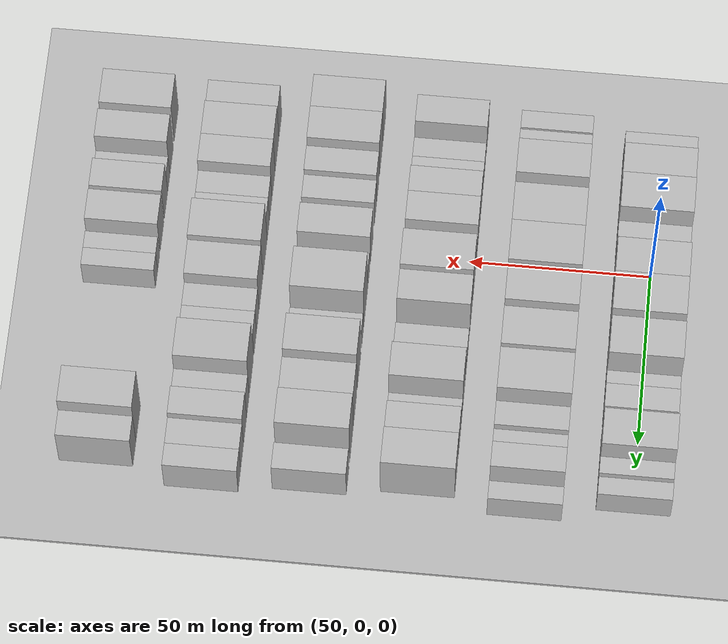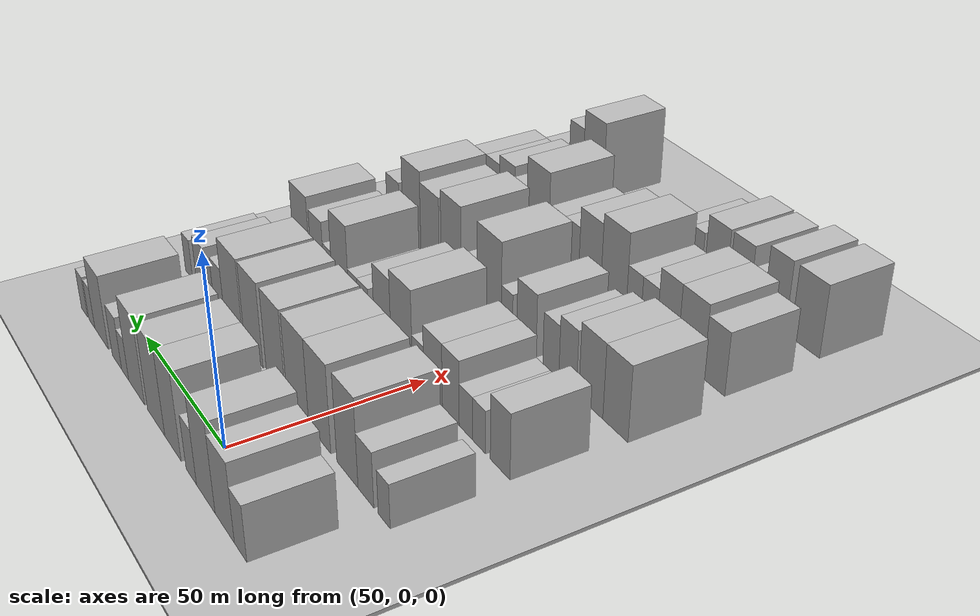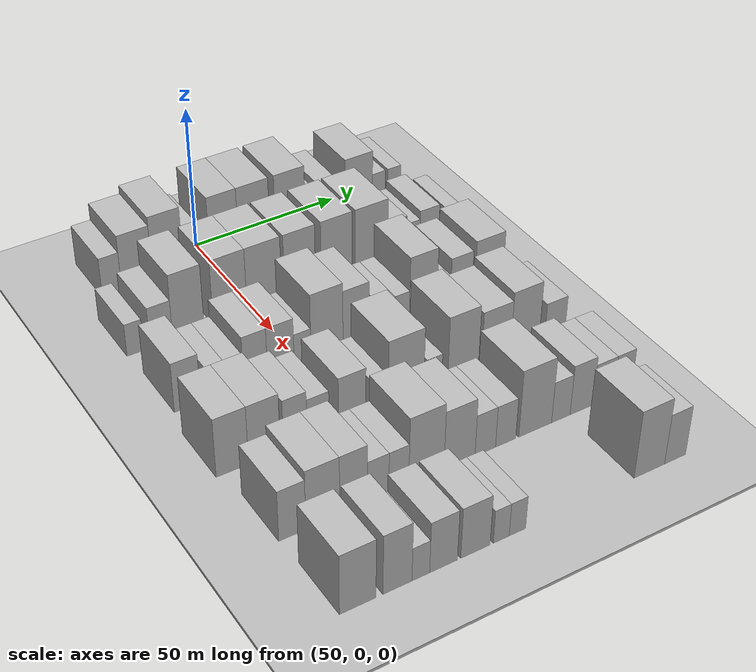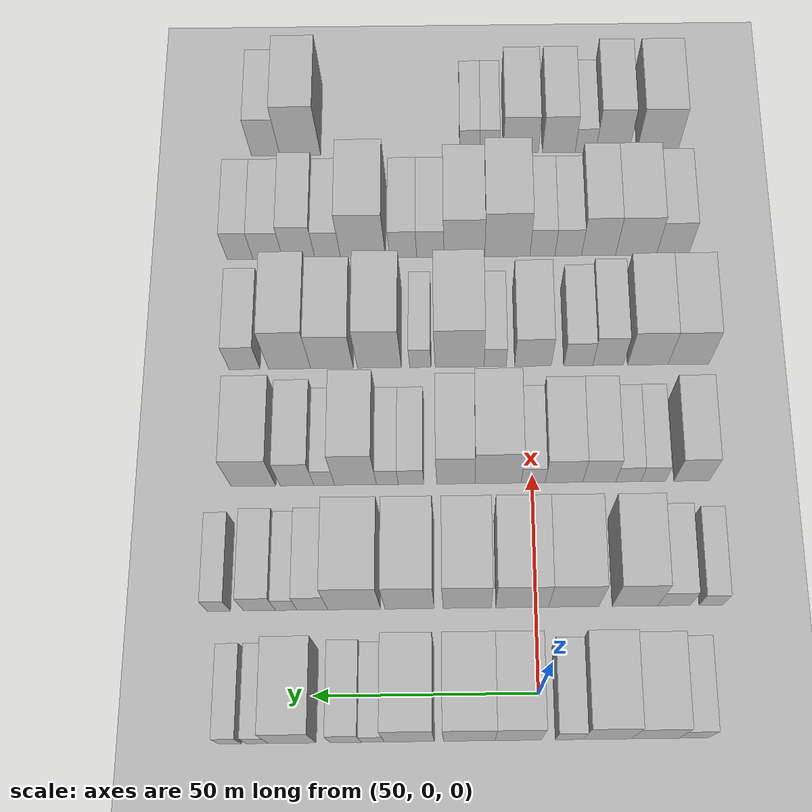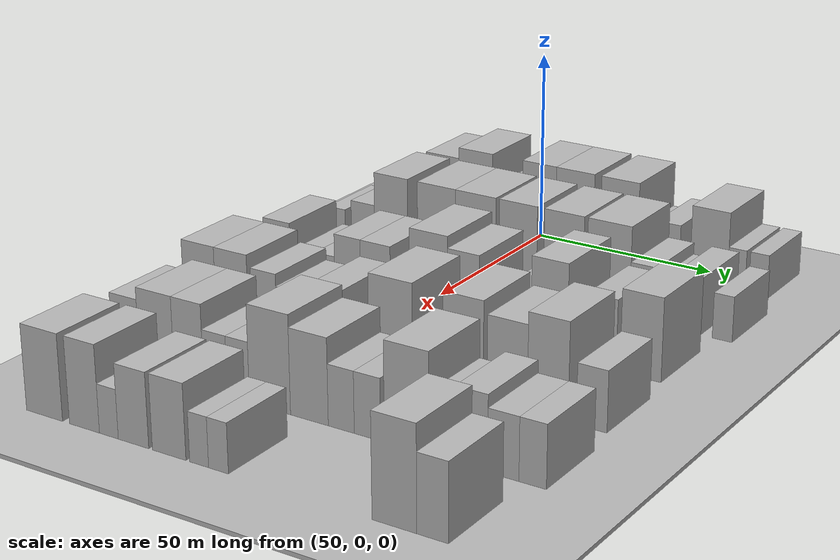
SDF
<sdf version="1.6">
 <world name="default">
  <include><name>ground_plane_1</name><uri>model://HANNAS_ground_plane</uri></include>
  <include>
   <name>ground_plane_2</name>
   <uri>model://HANNAS_ground_plane</uri>
   <pose>100 0 0  0 0 0</pose>
  </include>
  <model name="building_48">
   <static>1</static>
   <pose>50.0000 -33.5068 0 0.000000 0.000000 0.000000</pose>
   <link name="link">
    <pose>0 0 7.50 0 0 0</pose>
    <collision name="collision"><geometry><box><size>20.0000 6.4435 15.0000</size></box></geometry></collision>
    <visual name="visual">
     <cast_shadows>0</cast_shadows>
     <geometry><box><size>20.0000 6.4435 15.0000</size></box></geometry>
     <material>
      <script>
       <uri>model://HANNAS_wall/materials/scripts</uri>
       <uri>model://HANNAS_wall/materials/textures</uri>
       <name>vrc/HANNAS_wall</name>
      </script>
     </material>
    </visual>
   </link>
  </model>
  <model name="building_49">
   <static>1</static>
   <pose>50.0000 -25.0850 0 0.000000 0.000000 0.000000</pose>
   <link name="link">
    <pose>0 0 10.50 0 0 0</pose>
    <collision name="collision"><geometry><box><size>20.0000 10.4002 21.0000</size></box></geometry></collision>
    <visual name="visual">
     <cast_shadows>0</cast_shadows>
     <geometry><box><size>20.0000 10.4002 21.0000</size></box></geometry>
     <material>
      <script>
       <uri>model://HANNAS_wall/materials/scripts</uri>
       <uri>model://HANNAS_wall/materials/textures</uri>
       <name>vrc/HANNAS_wall</name>
      </script>
     </material>
    </visual>
   </link>
  </model>
  <model name="building_50">
   <static>1</static>
   <pose>50.0000 -14.6208 0 0.000000 0.000000 0.000000</pose>
   <link name="link">
    <pose>0 0 12.00 0 0 0</pose>
    <collision name="collision"><geometry><box><size>20.0000 10.5283 24.0000</size></box></geometry></collision>
    <visual name="visual">
     <cast_shadows>0</cast_shadows>
     <geometry><box><size>20.0000 10.5283 24.0000</size></box></geometry>
     <material>
      <script>
       <uri>model://HANNAS_wall/materials/scripts</uri>
       <uri>model://HANNAS_wall/materials/textures</uri>
       <name>vrc/HANNAS_wall</name>
      </script>
     </material>
    </visual>
   </link>
  </model>
  <model name="building_51">
   <static>1</static>
   <pose>50.0000 -6.2930 0 0.000000 0.000000 0.000000</pose>
   <link name="link">
    <pose>0 0 7.50 0 0 0</pose>
    <collision name="collision"><geometry><box><size>20.0000 6.1272 15.0000</size></box></geometry></collision>
    <visual name="visual">
     <cast_shadows>0</cast_shadows>
     <geometry><box><size>20.0000 6.1272 15.0000</size></box></geometry>
     <material>
      <script>
       <uri>model://HANNAS_wall/materials/scripts</uri>
       <uri>model://HANNAS_wall/materials/textures</uri>
       <name>vrc/HANNAS_wall</name>
      </script>
     </material>
    </visual>
   </link>
  </model>
  <model name="building_52">
   <static>1</static>
   <pose>50.0000 4.8331 0 0.000000 0.000000 0.000000</pose>
   <link name="link">
    <pose>0 0 12.00 0 0 0</pose>
    <collision name="collision"><geometry><box><size>20.0000 10.1249 24.0000</size></box></geometry></collision>
    <visual name="visual">
     <cast_shadows>0</cast_shadows>
     <geometry><box><size>20.0000 10.1249 24.0000</size></box></geometry>
     <material>
      <script>
       <uri>model://HANNAS_wall/materials/scripts</uri>
       <uri>model://HANNAS_wall/materials/textures</uri>
       <name>vrc/HANNAS_wall</name>
      </script>
     </material>
    </visual>
   </link>
  </model>
  <model name="building_53">
   <static>1</static>
   <pose>50.0000 15.5198 0 0.000000 0.000000 0.000000</pose>
   <link name="link">
    <pose>0 0 12.00 0 0 0</pose>
    <collision name="collision"><geometry><box><size>20.0000 11.2485 24.0000</size></box></geometry></collision>
    <visual name="visual">
     <cast_shadows>0</cast_shadows>
     <geometry><box><size>20.0000 11.2485 24.0000</size></box></geometry>
     <material>
      <script>
       <uri>model://HANNAS_wall/materials/scripts</uri>
       <uri>model://HANNAS_wall/materials/textures</uri>
       <name>vrc/HANNAS_wall</name>
      </script>
     </material>
    </visual>
   </link>
  </model>
  <model name="building_54">
   <static>1</static>
   <pose>50.0000 28.5931 0 0.000000 0.000000 0.000000</pose>
   <link name="link">
    <pose>0 0 12.00 0 0 0</pose>
    <collision name="collision"><geometry><box><size>20.0000 10.8982 24.0000</size></box></geometry></collision>
    <visual name="visual">
     <cast_shadows>0</cast_shadows>
     <geometry><box><size>20.0000 10.8982 24.0000</size></box></geometry>
     <material>
      <script>
       <uri>model://HANNAS_wall/materials/scripts</uri>
       <uri>model://HANNAS_wall/materials/textures</uri>
       <name>vrc/HANNAS_wall</name>
      </script>
     </material>
    </visual>
   </link>
  </model>
  <model name="building_55">
   <static>1</static>
   <pose>50.0000 36.5714 0 0.000000 0.000000 0.000000</pose>
   <link name="link">
    <pose>0 0 6.00 0 0 0</pose>
    <collision name="collision"><geometry><box><size>20.0000 5.0584 12.0000</size></box></geometry></collision>
    <visual name="visual">
     <cast_shadows>0</cast_shadows>
     <geometry><box><size>20.0000 5.0584 12.0000</size></box></geometry>
     <material>
      <script>
       <uri>model://HANNAS_wall/materials/scripts</uri>
       <uri>model://HANNAS_wall/materials/textures</uri>
       <name>vrc/HANNAS_wall</name>
      </script>
     </material>
    </visual>
   </link>
  </model>
  <model name="building_56">
   <static>1</static>
   <pose>50.0000 42.5042 0 0.000000 0.000000 0.000000</pose>
   <link name="link">
    <pose>0 0 7.50 0 0 0</pose>
    <collision name="collision"><geometry><box><size>20.0000 6.8070 15.0000</size></box></geometry></collision>
    <visual name="visual">
     <cast_shadows>0</cast_shadows>
     <geometry><box><size>20.0000 6.8070 15.0000</size></box></geometry>
     <material>
      <script>
       <uri>model://HANNAS_wall/materials/scripts</uri>
       <uri>model://HANNAS_wall/materials/textures</uri>
       <name>vrc/HANNAS_wall</name>
      </script>
     </material>
    </visual>
   </link>
  </model>
  <model name="building_57">
   <static>1</static>
   <pose>50.0000 54.0836 0 0.000000 0.000000 0.000000</pose>
   <link name="link">
    <pose>0 0 10.50 0 0 0</pose>
    <collision name="collision"><geometry><box><size>20.0000 10.3518 21.0000</size></box></geometry></collision>
    <visual name="visual">
     <cast_shadows>0</cast_shadows>
     <geometry><box><size>20.0000 10.3518 21.0000</size></box></geometry>
     <material>
      <script>
       <uri>model://HANNAS_wall/materials/scripts</uri>
       <uri>model://HANNAS_wall/materials/textures</uri>
       <name>vrc/HANNAS_wall</name>
      </script>
     </material>
    </visual>
   </link>
  </model>
  <model name="building_58">
   <static>1</static>
   <pose>50.0000 61.6799 0 0.000000 0.000000 0.000000</pose>
   <link name="link">
    <pose>0 0 6.00 0 0 0</pose>
    <collision name="collision"><geometry><box><size>20.0000 4.8407 12.0000</size></box></geometry></collision>
    <visual name="visual">
     <cast_shadows>0</cast_shadows>
     <geometry><box><size>20.0000 4.8407 12.0000</size></box></geometry>
     <material>
      <script>
       <uri>model://HANNAS_wall/materials/scripts</uri>
       <uri>model://HANNAS_wall/materials/textures</uri>
       <name>vrc/HANNAS_wall</name>
      </script>
     </material>
    </visual>
   </link>
  </model>
  <model name="building_59">
   <static>1</static>
   <pose>50.0000 67.6026 0 0.000000 0.000000 0.000000</pose>
   <link name="link">
    <pose>0 0 6.00 0 0 0</pose>
    <collision name="collision"><geometry><box><size>20.0000 5.0048 12.0000</size></box></geometry></collision>
    <visual name="visual">
     <cast_shadows>0</cast_shadows>
     <geometry><box><size>20.0000 5.0048 12.0000</size></box></geometry>
     <material>
      <script>
       <uri>model://HANNAS_wall/materials/scripts</uri>
       <uri>model://HANNAS_wall/materials/textures</uri>
       <name>vrc/HANNAS_wall</name>
      </script>
     </material>
    </visual>
   </link>
  </model>
  <model name="building_160">
   <static>1</static>
   <pose>79.0000 -39.4486 0 0.000000 0.000000 0.000000</pose>
   <link name="link">
    <pose>0 0 6.00 0 0 0</pose>
    <collision name="collision"><geometry><box><size>20.0000 5.3779 12.0000</size></box></geometry></collision>
    <visual name="visual">
     <cast_shadows>0</cast_shadows>
     <geometry><box><size>20.0000 5.3779 12.0000</size></box></geometry>
     <material>
      <script>
       <uri>model://HANNAS_wall/materials/scripts</uri>
       <uri>model://HANNAS_wall/materials/textures</uri>
       <name>vrc/HANNAS_wall</name>
      </script>
     </material>
    </visual>
   </link>
  </model>
  <model name="building_161">
   <static>1</static>
   <pose>79.0000 -31.0757 0 0.000000 0.000000 0.000000</pose>
   <link name="link">
    <pose>0 0 7.50 0 0 0</pose>
    <collision name="collision"><geometry><box><size>20.0000 7.3678 15.0000</size></box></geometry></collision>
    <visual name="visual">
     <cast_shadows>0</cast_shadows>
     <geometry><box><size>20.0000 7.3678 15.0000</size></box></geometry>
     <material>
      <script>
       <uri>model://HANNAS_wall/materials/scripts</uri>
       <uri>model://HANNAS_wall/materials/textures</uri>
       <name>vrc/HANNAS_wall</name>
      </script>
     </material>
    </visual>
   </link>
  </model>
  <model name="building_162">
   <static>1</static>
   <pose>79.0000 -22.2453 0 0.000000 0.000000 0.000000</pose>
   <link name="link">
    <pose>0 0 12.00 0 0 0</pose>
    <collision name="collision"><geometry><box><size>20.0000 10.2930 24.0000</size></box></geometry></collision>
    <visual name="visual">
     <cast_shadows>0</cast_shadows>
     <geometry><box><size>20.0000 10.2930 24.0000</size></box></geometry>
     <material>
      <script>
       <uri>model://HANNAS_wall/materials/scripts</uri>
       <uri>model://HANNAS_wall/materials/textures</uri>
       <name>vrc/HANNAS_wall</name>
      </script>
     </material>
    </visual>
   </link>
  </model>
  <model name="building_163">
   <static>1</static>
   <pose>79.0000 -8.4046 0 0.000000 0.000000 0.000000</pose>
   <link name="link">
    <pose>0 0 12.00 0 0 0</pose>
    <collision name="collision"><geometry><box><size>20.0000 11.3884 24.0000</size></box></geometry></collision>
    <visual name="visual">
     <cast_shadows>0</cast_shadows>
     <geometry><box><size>20.0000 11.3884 24.0000</size></box></geometry>
     <material>
      <script>
       <uri>model://HANNAS_wall/materials/scripts</uri>
       <uri>model://HANNAS_wall/materials/textures</uri>
       <name>vrc/HANNAS_wall</name>
      </script>
     </material>
    </visual>
   </link>
  </model>
  <model name="building_164">
   <static>1</static>
   <pose>79.0000 3.2386 0 0.000000 0.000000 0.000000</pose>
   <link name="link">
    <pose>0 0 12.00 0 0 0</pose>
    <collision name="collision"><geometry><box><size>20.0000 11.8980 24.0000</size></box></geometry></collision>
    <visual name="visual">
     <cast_shadows>0</cast_shadows>
     <geometry><box><size>20.0000 11.8980 24.0000</size></box></geometry>
     <material>
      <script>
       <uri>model://HANNAS_wall/materials/scripts</uri>
       <uri>model://HANNAS_wall/materials/textures</uri>
       <name>vrc/HANNAS_wall</name>
      </script>
     </material>
    </visual>
   </link>
  </model>
  <model name="building_165">
   <static>1</static>
   <pose>79.0000 15.6089 0 0.000000 0.000000 0.000000</pose>
   <link name="link">
    <pose>0 0 12.00 0 0 0</pose>
    <collision name="collision"><geometry><box><size>20.0000 10.8425 24.0000</size></box></geometry></collision>
    <visual name="visual">
     <cast_shadows>0</cast_shadows>
     <geometry><box><size>20.0000 10.8425 24.0000</size></box></geometry>
     <material>
      <script>
       <uri>model://HANNAS_wall/materials/scripts</uri>
       <uri>model://HANNAS_wall/materials/textures</uri>
       <name>vrc/HANNAS_wall</name>
      </script>
     </material>
    </visual>
   </link>
  </model>
  <model name="building_166">
   <static>1</static>
   <pose>79.0000 28.5748 0 0.000000 0.000000 0.000000</pose>
   <link name="link">
    <pose>0 0 12.00 0 0 0</pose>
    <collision name="collision"><geometry><box><size>20.0000 11.0894 24.0000</size></box></geometry></collision>
    <visual name="visual">
     <cast_shadows>0</cast_shadows>
     <geometry><box><size>20.0000 11.0894 24.0000</size></box></geometry>
     <material>
      <script>
       <uri>model://HANNAS_wall/materials/scripts</uri>
       <uri>model://HANNAS_wall/materials/textures</uri>
       <name>vrc/HANNAS_wall</name>
      </script>
     </material>
    </visual>
   </link>
  </model>
  <model name="building_167">
   <static>1</static>
   <pose>79.0000 41.0620 0 0.000000 0.000000 0.000000</pose>
   <link name="link">
    <pose>0 0 12.00 0 0 0</pose>
    <collision name="collision"><geometry><box><size>20.0000 11.8849 24.0000</size></box></geometry></collision>
    <visual name="visual">
     <cast_shadows>0</cast_shadows>
     <geometry><box><size>20.0000 11.8849 24.0000</size></box></geometry>
     <material>
      <script>
       <uri>model://HANNAS_wall/materials/scripts</uri>
       <uri>model://HANNAS_wall/materials/textures</uri>
       <name>vrc/HANNAS_wall</name>
      </script>
     </material>
    </visual>
   </link>
  </model>
  <model name="building_168">
   <static>1</static>
   <pose>79.0000 50.4676 0 0.000000 0.000000 0.000000</pose>
   <link name="link">
    <pose>0 0 7.50 0 0 0</pose>
    <collision name="collision"><geometry><box><size>20.0000 6.9264 15.0000</size></box></geometry></collision>
    <visual name="visual">
     <cast_shadows>0</cast_shadows>
     <geometry><box><size>20.0000 6.9264 15.0000</size></box></geometry>
     <material>
      <script>
       <uri>model://HANNAS_wall/materials/scripts</uri>
       <uri>model://HANNAS_wall/materials/textures</uri>
       <name>vrc/HANNAS_wall</name>
      </script>
     </material>
    </visual>
   </link>
  </model>
  <model name="building_169">
   <static>1</static>
   <pose>79.0000 56.3616 0 0.000000 0.000000 0.000000</pose>
   <link name="link">
    <pose>0 0 6.00 0 0 0</pose>
    <collision name="collision"><geometry><box><size>20.0000 4.8617 12.0000</size></box></geometry></collision>
    <visual name="visual">
     <cast_shadows>0</cast_shadows>
     <geometry><box><size>20.0000 4.8617 12.0000</size></box></geometry>
     <material>
      <script>
       <uri>model://HANNAS_wall/materials/scripts</uri>
       <uri>model://HANNAS_wall/materials/textures</uri>
       <name>vrc/HANNAS_wall</name>
      </script>
     </material>
    </visual>
   </link>
  </model>
  <model name="building_170">
   <static>1</static>
   <pose>79.0000 62.3846 0 0.000000 0.000000 0.000000</pose>
   <link name="link">
    <pose>0 0 7.50 0 0 0</pose>
    <collision name="collision"><geometry><box><size>20.0000 7.1843 15.0000</size></box></geometry></collision>
    <visual name="visual">
     <cast_shadows>0</cast_shadows>
     <geometry><box><size>20.0000 7.1843 15.0000</size></box></geometry>
     <material>
      <script>
       <uri>model://HANNAS_wall/materials/scripts</uri>
       <uri>model://HANNAS_wall/materials/textures</uri>
       <name>vrc/HANNAS_wall</name>
      </script>
     </material>
    </visual>
   </link>
  </model>
  <model name="building_171">
   <static>1</static>
   <pose>79.0000 71.5482 0 0.000000 0.000000 0.000000</pose>
   <link name="link">
    <pose>0 0 6.00 0 0 0</pose>
    <collision name="collision"><geometry><box><size>20.0000 5.1430 12.0000</size></box></geometry></collision>
    <visual name="visual">
     <cast_shadows>0</cast_shadows>
     <geometry><box><size>20.0000 5.1430 12.0000</size></box></geometry>
     <material>
      <script>
       <uri>model://HANNAS_wall/materials/scripts</uri>
       <uri>model://HANNAS_wall/materials/textures</uri>
       <name>vrc/HANNAS_wall</name>
      </script>
     </material>
    </visual>
   </link>
  </model>
  <model name="building_271">
   <static>1</static>
   <pose>108.0000 -37.0946 0 0.000000 0.000000 0.000000</pose>
   <link name="link">
    <pose>0 0 9.00 0 0 0</pose>
    <collision name="collision"><geometry><box><size>20.0000 8.2487 18.0000</size></box></geometry></collision>
    <visual name="visual">
     <cast_shadows>0</cast_shadows>
     <geometry><box><size>20.0000 8.2487 18.0000</size></box></geometry>
     <material>
      <script>
       <uri>model://HANNAS_wall/materials/scripts</uri>
       <uri>model://HANNAS_wall/materials/textures</uri>
       <name>vrc/HANNAS_wall</name>
      </script>
     </material>
    </visual>
   </link>
  </model>
  <model name="building_272">
   <static>1</static>
   <pose>108.0000 -28.0883 0 0.000000 0.000000 0.000000</pose>
   <link name="link">
    <pose>0 0 6.00 0 0 0</pose>
    <collision name="collision"><geometry><box><size>20.0000 5.7637 12.0000</size></box></geometry></collision>
    <visual name="visual">
     <cast_shadows>0</cast_shadows>
     <geometry><box><size>20.0000 5.7637 12.0000</size></box></geometry>
     <material>
      <script>
       <uri>model://HANNAS_wall/materials/scripts</uri>
       <uri>model://HANNAS_wall/materials/textures</uri>
       <name>vrc/HANNAS_wall</name>
      </script>
     </material>
    </visual>
   </link>
  </model>
  <model name="building_273">
   <static>1</static>
   <pose>108.0000 -22.3022 0 0.000000 0.000000 0.000000</pose>
   <link name="link">
    <pose>0 0 6.00 0 0 0</pose>
    <collision name="collision"><geometry><box><size>20.0000 5.8085 12.0000</size></box></geometry></collision>
    <visual name="visual">
     <cast_shadows>0</cast_shadows>
     <geometry><box><size>20.0000 5.8085 12.0000</size></box></geometry>
     <material>
      <script>
       <uri>model://HANNAS_wall/materials/scripts</uri>
       <uri>model://HANNAS_wall/materials/textures</uri>
       <name>vrc/HANNAS_wall</name>
      </script>
     </material>
    </visual>
   </link>
  </model>
  <model name="building_274">
   <static>1</static>
   <pose>108.0000 -15.5420 0 0.000000 0.000000 0.000000</pose>
   <link name="link">
    <pose>0 0 9.00 0 0 0</pose>
    <collision name="collision"><geometry><box><size>20.0000 7.7120 18.0000</size></box></geometry></collision>
    <visual name="visual">
     <cast_shadows>0</cast_shadows>
     <geometry><box><size>20.0000 7.7120 18.0000</size></box></geometry>
     <material>
      <script>
       <uri>model://HANNAS_wall/materials/scripts</uri>
       <uri>model://HANNAS_wall/materials/textures</uri>
       <name>vrc/HANNAS_wall</name>
      </script>
     </material>
    </visual>
   </link>
  </model>
  <model name="building_275">
   <static>1</static>
   <pose>108.0000 -7.3101 0 0.000000 0.000000 0.000000</pose>
   <link name="link">
    <pose>0 0 9.00 0 0 0</pose>
    <collision name="collision"><geometry><box><size>20.0000 8.7517 18.0000</size></box></geometry></collision>
    <visual name="visual">
     <cast_shadows>0</cast_shadows>
     <geometry><box><size>20.0000 8.7517 18.0000</size></box></geometry>
     <material>
      <script>
       <uri>model://HANNAS_wall/materials/scripts</uri>
       <uri>model://HANNAS_wall/materials/textures</uri>
       <name>vrc/HANNAS_wall</name>
      </script>
     </material>
    </visual>
   </link>
  </model>
  <model name="building_276">
   <static>1</static>
   <pose>108.0000 -0.1403 0 0.000000 0.000000 0.000000</pose>
   <link name="link">
    <pose>0 0 6.00 0 0 0</pose>
    <collision name="collision"><geometry><box><size>20.0000 5.5878 12.0000</size></box></geometry></collision>
    <visual name="visual">
     <cast_shadows>0</cast_shadows>
     <geometry><box><size>20.0000 5.5878 12.0000</size></box></geometry>
     <material>
      <script>
       <uri>model://HANNAS_wall/materials/scripts</uri>
       <uri>model://HANNAS_wall/materials/textures</uri>
       <name>vrc/HANNAS_wall</name>
      </script>
     </material>
    </visual>
   </link>
  </model>
  <model name="building_277">
   <static>1</static>
   <pose>108.0000 8.0390 0 0.000000 0.000000 0.000000</pose>
   <link name="link">
    <pose>0 0 12.00 0 0 0</pose>
    <collision name="collision"><geometry><box><size>20.0000 10.7709 24.0000</size></box></geometry></collision>
    <visual name="visual">
     <cast_shadows>0</cast_shadows>
     <geometry><box><size>20.0000 10.7709 24.0000</size></box></geometry>
     <material>
      <script>
       <uri>model://HANNAS_wall/materials/scripts</uri>
       <uri>model://HANNAS_wall/materials/textures</uri>
       <name>vrc/HANNAS_wall</name>
      </script>
     </material>
    </visual>
   </link>
  </model>
  <model name="building_278">
   <static>1</static>
   <pose>108.0000 17.8528 0 0.000000 0.000000 0.000000</pose>
   <link name="link">
    <pose>0 0 10.50 0 0 0</pose>
    <collision name="collision"><geometry><box><size>20.0000 8.8566 21.0000</size></box></geometry></collision>
    <visual name="visual">
     <cast_shadows>0</cast_shadows>
     <geometry><box><size>20.0000 8.8566 21.0000</size></box></geometry>
     <material>
      <script>
       <uri>model://HANNAS_wall/materials/scripts</uri>
       <uri>model://HANNAS_wall/materials/textures</uri>
       <name>vrc/HANNAS_wall</name>
      </script>
     </material>
    </visual>
   </link>
  </model>
  <model name="building_279">
   <static>1</static>
   <pose>108.0000 28.2652 0 0.000000 0.000000 0.000000</pose>
   <link name="link">
    <pose>0 0 6.00 0 0 0</pose>
    <collision name="collision"><geometry><box><size>20.0000 5.9684 12.0000</size></box></geometry></collision>
    <visual name="visual">
     <cast_shadows>0</cast_shadows>
     <geometry><box><size>20.0000 5.9684 12.0000</size></box></geometry>
     <material>
      <script>
       <uri>model://HANNAS_wall/materials/scripts</uri>
       <uri>model://HANNAS_wall/materials/textures</uri>
       <name>vrc/HANNAS_wall</name>
      </script>
     </material>
    </visual>
   </link>
  </model>
  <model name="building_280">
   <static>1</static>
   <pose>108.0000 33.7950 0 0.000000 0.000000 0.000000</pose>
   <link name="link">
    <pose>0 0 6.00 0 0 0</pose>
    <collision name="collision"><geometry><box><size>20.0000 5.0912 12.0000</size></box></geometry></collision>
    <visual name="visual">
     <cast_shadows>0</cast_shadows>
     <geometry><box><size>20.0000 5.0912 12.0000</size></box></geometry>
     <material>
      <script>
       <uri>model://HANNAS_wall/materials/scripts</uri>
       <uri>model://HANNAS_wall/materials/textures</uri>
       <name>vrc/HANNAS_wall</name>
      </script>
     </material>
    </visual>
   </link>
  </model>
  <model name="building_281">
   <static>1</static>
   <pose>108.0000 41.2083 0 0.000000 0.000000 0.000000</pose>
   <link name="link">
    <pose>0 0 12.00 0 0 0</pose>
    <collision name="collision"><geometry><box><size>20.0000 9.7353 24.0000</size></box></geometry></collision>
    <visual name="visual">
     <cast_shadows>0</cast_shadows>
     <geometry><box><size>20.0000 9.7353 24.0000</size></box></geometry>
     <material>
      <script>
       <uri>model://HANNAS_wall/materials/scripts</uri>
       <uri>model://HANNAS_wall/materials/textures</uri>
       <name>vrc/HANNAS_wall</name>
      </script>
     </material>
    </visual>
   </link>
  </model>
  <model name="building_282">
   <static>1</static>
   <pose>108.0000 48.5063 0 0.000000 0.000000 0.000000</pose>
   <link name="link">
    <pose>0 0 6.00 0 0 0</pose>
    <collision name="collision"><geometry><box><size>20.0000 4.8606 12.0000</size></box></geometry></collision>
    <visual name="visual">
     <cast_shadows>0</cast_shadows>
     <geometry><box><size>20.0000 4.8606 12.0000</size></box></geometry>
     <material>
      <script>
       <uri>model://HANNAS_wall/materials/scripts</uri>
       <uri>model://HANNAS_wall/materials/textures</uri>
       <name>vrc/HANNAS_wall</name>
      </script>
     </material>
    </visual>
   </link>
  </model>
  <model name="building_283">
   <static>1</static>
   <pose>108.0000 54.8589 0 0.000000 0.000000 0.000000</pose>
   <link name="link">
    <pose>0 0 9.00 0 0 0</pose>
    <collision name="collision"><geometry><box><size>20.0000 7.8447 18.0000</size></box></geometry></collision>
    <visual name="visual">
     <cast_shadows>0</cast_shadows>
     <geometry><box><size>20.0000 7.8447 18.0000</size></box></geometry>
     <material>
      <script>
       <uri>model://HANNAS_wall/materials/scripts</uri>
       <uri>model://HANNAS_wall/materials/textures</uri>
       <name>vrc/HANNAS_wall</name>
      </script>
     </material>
    </visual>
   </link>
  </model>
  <model name="building_284">
   <static>1</static>
   <pose>108.0000 64.9696 0 0.000000 0.000000 0.000000</pose>
   <link name="link">
    <pose>0 0 10.50 0 0 0</pose>
    <collision name="collision"><geometry><box><size>20.0000 10.3768 21.0000</size></box></geometry></collision>
    <visual name="visual">
     <cast_shadows>0</cast_shadows>
     <geometry><box><size>20.0000 10.3768 21.0000</size></box></geometry>
     <material>
      <script>
       <uri>model://HANNAS_wall/materials/scripts</uri>
       <uri>model://HANNAS_wall/materials/textures</uri>
       <name>vrc/HANNAS_wall</name>
      </script>
     </material>
    </visual>
   </link>
  </model>
  <model name="building_384">
   <static>1</static>
   <pose>137.0000 -38.3484 0 0.000000 0.000000 0.000000</pose>
   <link name="link">
    <pose>0 0 10.50 0 0 0</pose>
    <collision name="collision"><geometry><box><size>20.0000 9.7846 21.0000</size></box></geometry></collision>
    <visual name="visual">
     <cast_shadows>0</cast_shadows>
     <geometry><box><size>20.0000 9.7846 21.0000</size></box></geometry>
     <material>
      <script>
       <uri>model://HANNAS_wall/materials/scripts</uri>
       <uri>model://HANNAS_wall/materials/textures</uri>
       <name>vrc/HANNAS_wall</name>
      </script>
     </material>
    </visual>
   </link>
  </model>
  <model name="building_385">
   <static>1</static>
   <pose>137.0000 -28.5761 0 0.000000 0.000000 0.000000</pose>
   <link name="link">
    <pose>0 0 10.50 0 0 0</pose>
    <collision name="collision"><geometry><box><size>20.0000 9.7600 21.0000</size></box></geometry></collision>
    <visual name="visual">
     <cast_shadows>0</cast_shadows>
     <geometry><box><size>20.0000 9.7600 21.0000</size></box></geometry>
     <material>
      <script>
       <uri>model://HANNAS_wall/materials/scripts</uri>
       <uri>model://HANNAS_wall/materials/textures</uri>
       <name>vrc/HANNAS_wall</name>
      </script>
     </material>
    </visual>
   </link>
  </model>
  <model name="building_386">
   <static>1</static>
   <pose>137.0000 -19.0066 0 0.000000 0.000000 0.000000</pose>
   <link name="link">
    <pose>0 0 9.00 0 0 0</pose>
    <collision name="collision"><geometry><box><size>20.0000 7.3791 18.0000</size></box></geometry></collision>
    <visual name="visual">
     <cast_shadows>0</cast_shadows>
     <geometry><box><size>20.0000 7.3791 18.0000</size></box></geometry>
     <material>
      <script>
       <uri>model://HANNAS_wall/materials/scripts</uri>
       <uri>model://HANNAS_wall/materials/textures</uri>
       <name>vrc/HANNAS_wall</name>
      </script>
     </material>
    </visual>
   </link>
  </model>
  <model name="building_387">
   <static>1</static>
   <pose>137.0000 -11.8386 0 0.000000 0.000000 0.000000</pose>
   <link name="link">
    <pose>0 0 7.50 0 0 0</pose>
    <collision name="collision"><geometry><box><size>20.0000 6.9569 15.0000</size></box></geometry></collision>
    <visual name="visual">
     <cast_shadows>0</cast_shadows>
     <geometry><box><size>20.0000 6.9569 15.0000</size></box></geometry>
     <material>
      <script>
       <uri>model://HANNAS_wall/materials/scripts</uri>
       <uri>model://HANNAS_wall/materials/textures</uri>
       <name>vrc/HANNAS_wall</name>
      </script>
     </material>
    </visual>
   </link>
  </model>
  <model name="building_388">
   <static>1</static>
   <pose>137.0000 -0.9515 0 0.000000 0.000000 0.000000</pose>
   <link name="link">
    <pose>0 0 9.00 0 0 0</pose>
    <collision name="collision"><geometry><box><size>20.0000 8.8173 18.0000</size></box></geometry></collision>
    <visual name="visual">
     <cast_shadows>0</cast_shadows>
     <geometry><box><size>20.0000 8.8173 18.0000</size></box></geometry>
     <material>
      <script>
       <uri>model://HANNAS_wall/materials/scripts</uri>
       <uri>model://HANNAS_wall/materials/textures</uri>
       <name>vrc/HANNAS_wall</name>
      </script>
     </material>
    </visual>
   </link>
  </model>
  <model name="building_389">
   <static>1</static>
   <pose>137.0000 8.1065 0 0.000000 0.000000 0.000000</pose>
   <link name="link">
    <pose>0 0 6.00 0 0 0</pose>
    <collision name="collision"><geometry><box><size>20.0000 5.2987 12.0000</size></box></geometry></collision>
    <visual name="visual">
     <cast_shadows>0</cast_shadows>
     <geometry><box><size>20.0000 5.2987 12.0000</size></box></geometry>
     <material>
      <script>
       <uri>model://HANNAS_wall/materials/scripts</uri>
       <uri>model://HANNAS_wall/materials/textures</uri>
       <name>vrc/HANNAS_wall</name>
      </script>
     </material>
    </visual>
   </link>
  </model>
  <model name="building_390">
   <static>1</static>
   <pose>137.0000 16.6434 0 0.000000 0.000000 0.000000</pose>
   <link name="link">
    <pose>0 0 12.00 0 0 0</pose>
    <collision name="collision"><geometry><box><size>20.0000 11.7750 24.0000</size></box></geometry></collision>
    <visual name="visual">
     <cast_shadows>0</cast_shadows>
     <geometry><box><size>20.0000 11.7750 24.0000</size></box></geometry>
     <material>
      <script>
       <uri>model://HANNAS_wall/materials/scripts</uri>
       <uri>model://HANNAS_wall/materials/textures</uri>
       <name>vrc/HANNAS_wall</name>
      </script>
     </material>
    </visual>
   </link>
  </model>
  <model name="building_391">
   <static>1</static>
   <pose>137.0000 26.0926 0 0.000000 0.000000 0.000000</pose>
   <link name="link">
    <pose>0 0 6.00 0 0 0</pose>
    <collision name="collision"><geometry><box><size>20.0000 5.1236 12.0000</size></box></geometry></collision>
    <visual name="visual">
     <cast_shadows>0</cast_shadows>
     <geometry><box><size>20.0000 5.1236 12.0000</size></box></geometry>
     <material>
      <script>
       <uri>model://HANNAS_wall/materials/scripts</uri>
       <uri>model://HANNAS_wall/materials/textures</uri>
       <name>vrc/HANNAS_wall</name>
      </script>
     </material>
    </visual>
   </link>
  </model>
  <model name="building_392">
   <static>1</static>
   <pose>137.0000 35.9270 0 0.000000 0.000000 0.000000</pose>
   <link name="link">
    <pose>0 0 12.00 0 0 0</pose>
    <collision name="collision"><geometry><box><size>20.0000 10.5451 24.0000</size></box></geometry></collision>
    <visual name="visual">
     <cast_shadows>0</cast_shadows>
     <geometry><box><size>20.0000 10.5451 24.0000</size></box></geometry>
     <material>
      <script>
       <uri>model://HANNAS_wall/materials/scripts</uri>
       <uri>model://HANNAS_wall/materials/textures</uri>
       <name>vrc/HANNAS_wall</name>
      </script>
     </material>
    </visual>
   </link>
  </model>
  <model name="building_393">
   <static>1</static>
   <pose>137.0000 47.3110 0 0.000000 0.000000 0.000000</pose>
   <link name="link">
    <pose>0 0 10.50 0 0 0</pose>
    <collision name="collision"><geometry><box><size>20.0000 10.2228 21.0000</size></box></geometry></collision>
    <visual name="visual">
     <cast_shadows>0</cast_shadows>
     <geometry><box><size>20.0000 10.2228 21.0000</size></box></geometry>
     <material>
      <script>
       <uri>model://HANNAS_wall/materials/scripts</uri>
       <uri>model://HANNAS_wall/materials/textures</uri>
       <name>vrc/HANNAS_wall</name>
      </script>
     </material>
    </visual>
   </link>
  </model>
  <model name="building_394">
   <static>1</static>
   <pose>137.0000 57.4984 0 0.000000 0.000000 0.000000</pose>
   <link name="link">
    <pose>0 0 12.00 0 0 0</pose>
    <collision name="collision"><geometry><box><size>20.0000 10.1521 24.0000</size></box></geometry></collision>
    <visual name="visual">
     <cast_shadows>0</cast_shadows>
     <geometry><box><size>20.0000 10.1521 24.0000</size></box></geometry>
     <material>
      <script>
       <uri>model://HANNAS_wall/materials/scripts</uri>
       <uri>model://HANNAS_wall/materials/textures</uri>
       <name>vrc/HANNAS_wall</name>
      </script>
     </material>
    </visual>
   </link>
  </model>
  <model name="building_395">
   <static>1</static>
   <pose>137.0000 68.2930 0 0.000000 0.000000 0.000000</pose>
   <link name="link">
    <pose>0 0 7.50 0 0 0</pose>
    <collision name="collision"><geometry><box><size>20.0000 7.4371 15.0000</size></box></geometry></collision>
    <visual name="visual">
     <cast_shadows>0</cast_shadows>
     <geometry><box><size>20.0000 7.4371 15.0000</size></box></geometry>
     <material>
      <script>
       <uri>model://HANNAS_wall/materials/scripts</uri>
       <uri>model://HANNAS_wall/materials/textures</uri>
       <name>vrc/HANNAS_wall</name>
      </script>
     </material>
    </visual>
   </link>
  </model>
  <model name="building_499">
   <static>1</static>
   <pose>166.0000 -36.3883 0 0.000000 0.000000 0.000000</pose>
   <link name="link">
    <pose>0 0 9.00 0 0 0</pose>
    <collision name="collision"><geometry><box><size>20.0000 7.9838 18.0000</size></box></geometry></collision>
    <visual name="visual">
     <cast_shadows>0</cast_shadows>
     <geometry><box><size>20.0000 7.9838 18.0000</size></box></geometry>
     <material>
      <script>
       <uri>model://HANNAS_wall/materials/scripts</uri>
       <uri>model://HANNAS_wall/materials/textures</uri>
       <name>vrc/HANNAS_wall</name>
      </script>
     </material>
    </visual>
   </link>
  </model>
  <model name="building_500">
   <static>1</static>
   <pose>166.0000 -27.3306 0 0.000000 0.000000 0.000000</pose>
   <link name="link">
    <pose>0 0 10.50 0 0 0</pose>
    <collision name="collision"><geometry><box><size>20.0000 10.1316 21.0000</size></box></geometry></collision>
    <visual name="visual">
     <cast_shadows>0</cast_shadows>
     <geometry><box><size>20.0000 10.1316 21.0000</size></box></geometry>
     <material>
      <script>
       <uri>model://HANNAS_wall/materials/scripts</uri>
       <uri>model://HANNAS_wall/materials/textures</uri>
       <name>vrc/HANNAS_wall</name>
      </script>
     </material>
    </visual>
   </link>
  </model>
  <model name="building_501">
   <static>1</static>
   <pose>166.0000 -18.0537 0 0.000000 0.000000 0.000000</pose>
   <link name="link">
    <pose>0 0 10.50 0 0 0</pose>
    <collision name="collision"><geometry><box><size>20.0000 8.4223 21.0000</size></box></geometry></collision>
    <visual name="visual">
     <cast_shadows>0</cast_shadows>
     <geometry><box><size>20.0000 8.4223 21.0000</size></box></geometry>
     <material>
      <script>
       <uri>model://HANNAS_wall/materials/scripts</uri>
       <uri>model://HANNAS_wall/materials/textures</uri>
       <name>vrc/HANNAS_wall</name>
      </script>
     </material>
    </visual>
   </link>
  </model>
  <model name="building_502">
   <static>1</static>
   <pose>166.0000 -10.5516 0 0.000000 0.000000 0.000000</pose>
   <link name="link">
    <pose>0 0 7.50 0 0 0</pose>
    <collision name="collision"><geometry><box><size>20.0000 6.5819 15.0000</size></box></geometry></collision>
    <visual name="visual">
     <cast_shadows>0</cast_shadows>
     <geometry><box><size>20.0000 6.5819 15.0000</size></box></geometry>
     <material>
      <script>
       <uri>model://HANNAS_wall/materials/scripts</uri>
       <uri>model://HANNAS_wall/materials/textures</uri>
       <name>vrc/HANNAS_wall</name>
      </script>
     </material>
    </visual>
   </link>
  </model>
  <model name="building_503">
   <static>1</static>
   <pose>166.0000 -4.1573 0 0.000000 0.000000 0.000000</pose>
   <link name="link">
    <pose>0 0 7.50 0 0 0</pose>
    <collision name="collision"><geometry><box><size>20.0000 6.2067 15.0000</size></box></geometry></collision>
    <visual name="visual">
     <cast_shadows>0</cast_shadows>
     <geometry><box><size>20.0000 6.2067 15.0000</size></box></geometry>
     <material>
      <script>
       <uri>model://HANNAS_wall/materials/scripts</uri>
       <uri>model://HANNAS_wall/materials/textures</uri>
       <name>vrc/HANNAS_wall</name>
      </script>
     </material>
    </visual>
   </link>
  </model>
  <model name="building_504">
   <static>1</static>
   <pose>166.0000 4.5342 0 0.000000 0.000000 0.000000</pose>
   <link name="link">
    <pose>0 0 12.00 0 0 0</pose>
    <collision name="collision"><geometry><box><size>20.0000 11.1763 24.0000</size></box></geometry></collision>
    <visual name="visual">
     <cast_shadows>0</cast_shadows>
     <geometry><box><size>20.0000 11.1763 24.0000</size></box></geometry>
     <material>
      <script>
       <uri>model://HANNAS_wall/materials/scripts</uri>
       <uri>model://HANNAS_wall/materials/textures</uri>
       <name>vrc/HANNAS_wall</name>
      </script>
     </material>
    </visual>
   </link>
  </model>
  <model name="building_505">
   <static>1</static>
   <pose>166.0000 15.1437 0 0.000000 0.000000 0.000000</pose>
   <link name="link">
    <pose>0 0 10.50 0 0 0</pose>
    <collision name="collision"><geometry><box><size>20.0000 10.0427 21.0000</size></box></geometry></collision>
    <visual name="visual">
     <cast_shadows>0</cast_shadows>
     <geometry><box><size>20.0000 10.0427 21.0000</size></box></geometry>
     <material>
      <script>
       <uri>model://HANNAS_wall/materials/scripts</uri>
       <uri>model://HANNAS_wall/materials/textures</uri>
       <name>vrc/HANNAS_wall</name>
      </script>
     </material>
    </visual>
   </link>
  </model>
  <model name="building_506">
   <static>1</static>
   <pose>166.0000 23.5519 0 0.000000 0.000000 0.000000</pose>
   <link name="link">
    <pose>0 0 7.50 0 0 0</pose>
    <collision name="collision"><geometry><box><size>20.0000 6.7736 15.0000</size></box></geometry></collision>
    <visual name="visual">
     <cast_shadows>0</cast_shadows>
     <geometry><box><size>20.0000 6.7736 15.0000</size></box></geometry>
     <material>
      <script>
       <uri>model://HANNAS_wall/materials/scripts</uri>
       <uri>model://HANNAS_wall/materials/textures</uri>
       <name>vrc/HANNAS_wall</name>
      </script>
     </material>
    </visual>
   </link>
  </model>
  <model name="building_507">
   <static>1</static>
   <pose>166.0000 30.2929 0 0.000000 0.000000 0.000000</pose>
   <link name="link">
    <pose>0 0 7.50 0 0 0</pose>
    <collision name="collision"><geometry><box><size>20.0000 6.7084 15.0000</size></box></geometry></collision>
    <visual name="visual">
     <cast_shadows>0</cast_shadows>
     <geometry><box><size>20.0000 6.7084 15.0000</size></box></geometry>
     <material>
      <script>
       <uri>model://HANNAS_wall/materials/scripts</uri>
       <uri>model://HANNAS_wall/materials/textures</uri>
       <name>vrc/HANNAS_wall</name>
      </script>
     </material>
    </visual>
   </link>
  </model>
  <model name="building_508">
   <static>1</static>
   <pose>166.0000 40.2114 0 0.000000 0.000000 0.000000</pose>
   <link name="link">
    <pose>0 0 12.00 0 0 0</pose>
    <collision name="collision"><geometry><box><size>20.0000 11.1287 24.0000</size></box></geometry></collision>
    <visual name="visual">
     <cast_shadows>0</cast_shadows>
     <geometry><box><size>20.0000 11.1287 24.0000</size></box></geometry>
     <material>
      <script>
       <uri>model://HANNAS_wall/materials/scripts</uri>
       <uri>model://HANNAS_wall/materials/textures</uri>
       <name>vrc/HANNAS_wall</name>
      </script>
     </material>
    </visual>
   </link>
  </model>
  <model name="building_509">
   <static>1</static>
   <pose>166.0000 48.9553 0 0.000000 0.000000 0.000000</pose>
   <link name="link">
    <pose>0 0 7.50 0 0 0</pose>
    <collision name="collision"><geometry><box><size>20.0000 6.3591 15.0000</size></box></geometry></collision>
    <visual name="visual">
     <cast_shadows>0</cast_shadows>
     <geometry><box><size>20.0000 6.3591 15.0000</size></box></geometry>
     <material>
      <script>
       <uri>model://HANNAS_wall/materials/scripts</uri>
       <uri>model://HANNAS_wall/materials/textures</uri>
       <name>vrc/HANNAS_wall</name>
      </script>
     </material>
    </visual>
   </link>
  </model>
  <model name="building_510">
   <static>1</static>
   <pose>166.0000 56.1042 0 0.000000 0.000000 0.000000</pose>
   <link name="link">
    <pose>0 0 9.00 0 0 0</pose>
    <collision name="collision"><geometry><box><size>20.0000 7.9387 18.0000</size></box></geometry></collision>
    <visual name="visual">
     <cast_shadows>0</cast_shadows>
     <geometry><box><size>20.0000 7.9387 18.0000</size></box></geometry>
     <material>
      <script>
       <uri>model://HANNAS_wall/materials/scripts</uri>
       <uri>model://HANNAS_wall/materials/textures</uri>
       <name>vrc/HANNAS_wall</name>
      </script>
     </material>
    </visual>
   </link>
  </model>
  <model name="building_511">
   <static>1</static>
   <pose>166.0000 63.7655 0 0.000000 0.000000 0.000000</pose>
   <link name="link">
    <pose>0 0 7.50 0 0 0</pose>
    <collision name="collision"><geometry><box><size>20.0000 7.3839 15.0000</size></box></geometry></collision>
    <visual name="visual">
     <cast_shadows>0</cast_shadows>
     <geometry><box><size>20.0000 7.3839 15.0000</size></box></geometry>
     <material>
      <script>
       <uri>model://HANNAS_wall/materials/scripts</uri>
       <uri>model://HANNAS_wall/materials/textures</uri>
       <name>vrc/HANNAS_wall</name>
      </script>
     </material>
    </visual>
   </link>
  </model>
  <model name="building_512">
   <static>1</static>
   <pose>166.0000 70.6567 0 0.000000 0.000000 0.000000</pose>
   <link name="link">
    <pose>0 0 7.50 0 0 0</pose>
    <collision name="collision"><geometry><box><size>20.0000 6.3985 15.0000</size></box></geometry></collision>
    <visual name="visual">
     <cast_shadows>0</cast_shadows>
     <geometry><box><size>20.0000 6.3985 15.0000</size></box></geometry>
     <material>
      <script>
       <uri>model://HANNAS_wall/materials/scripts</uri>
       <uri>model://HANNAS_wall/materials/textures</uri>
       <name>vrc/HANNAS_wall</name>
      </script>
     </material>
    </visual>
   </link>
  </model>
  <model name="building_602">
   <static>1</static>
   <pose>195.0000 -34.4231 0 0.000000 0.000000 0.000000</pose>
   <link name="link">
    <pose>0 0 10.50 0 0 0</pose>
    <collision name="collision"><geometry><box><size>20.0000 10.4598 21.0000</size></box></geometry></collision>
    <visual name="visual">
     <cast_shadows>0</cast_shadows>
     <geometry><box><size>20.0000 10.4598 21.0000</size></box></geometry>
     <material>
      <script>
       <uri>model://HANNAS_wall/materials/scripts</uri>
       <uri>model://HANNAS_wall/materials/textures</uri>
       <name>vrc/HANNAS_wall</name>
      </script>
     </material>
    </visual>
   </link>
  </model>
  <model name="building_603">
   <static>1</static>
   <pose>195.0000 -22.9443 0 0.000000 0.000000 0.000000</pose>
   <link name="link">
    <pose>0 0 10.50 0 0 0</pose>
    <collision name="collision"><geometry><box><size>20.0000 8.4977 21.0000</size></box></geometry></collision>
    <visual name="visual">
     <cast_shadows>0</cast_shadows>
     <geometry><box><size>20.0000 8.4977 21.0000</size></box></geometry>
     <material>
      <script>
       <uri>model://HANNAS_wall/materials/scripts</uri>
       <uri>model://HANNAS_wall/materials/textures</uri>
       <name>vrc/HANNAS_wall</name>
      </script>
     </material>
    </visual>
   </link>
  </model>
  <model name="building_604">
   <static>1</static>
   <pose>195.0000 -16.0681 0 0.000000 0.000000 0.000000</pose>
   <link name="link">
    <pose>0 0 6.00 0 0 0</pose>
    <collision name="collision"><geometry><box><size>20.0000 5.2548 12.0000</size></box></geometry></collision>
    <visual name="visual">
     <cast_shadows>0</cast_shadows>
     <geometry><box><size>20.0000 5.2548 12.0000</size></box></geometry>
     <material>
      <script>
       <uri>model://HANNAS_wall/materials/scripts</uri>
       <uri>model://HANNAS_wall/materials/textures</uri>
       <name>vrc/HANNAS_wall</name>
      </script>
     </material>
    </visual>
   </link>
  </model>
  <model name="building_605">
   <static>1</static>
   <pose>195.0000 -9.2593 0 0.000000 0.000000 0.000000</pose>
   <link name="link">
    <pose>0 0 9.00 0 0 0</pose>
    <collision name="collision"><geometry><box><size>20.0000 8.3628 18.0000</size></box></geometry></collision>
    <visual name="visual">
     <cast_shadows>0</cast_shadows>
     <geometry><box><size>20.0000 8.3628 18.0000</size></box></geometry>
     <material>
      <script>
       <uri>model://HANNAS_wall/materials/scripts</uri>
       <uri>model://HANNAS_wall/materials/textures</uri>
       <name>vrc/HANNAS_wall</name>
      </script>
     </material>
    </visual>
   </link>
  </model>
  <model name="building_606">
   <static>1</static>
   <pose>195.0000 0.4156 0 0.000000 0.000000 0.000000</pose>
   <link name="link">
    <pose>0 0 9.00 0 0 0</pose>
    <collision name="collision"><geometry><box><size>20.0000 8.9870 18.0000</size></box></geometry></collision>
    <visual name="visual">
     <cast_shadows>0</cast_shadows>
     <geometry><box><size>20.0000 8.9870 18.0000</size></box></geometry>
     <material>
      <script>
       <uri>model://HANNAS_wall/materials/scripts</uri>
       <uri>model://HANNAS_wall/materials/textures</uri>
       <name>vrc/HANNAS_wall</name>
      </script>
     </material>
    </visual>
   </link>
  </model>
  <model name="building_607">
   <static>1</static>
   <pose>195.0000 8.3855 0 0.000000 0.000000 0.000000</pose>
   <link name="link">
    <pose>0 0 6.00 0 0 0</pose>
    <collision name="collision"><geometry><box><size>20.0000 4.9527 12.0000</size></box></geometry></collision>
    <visual name="visual">
     <cast_shadows>0</cast_shadows>
     <geometry><box><size>20.0000 4.9527 12.0000</size></box></geometry>
     <material>
      <script>
       <uri>model://HANNAS_wall/materials/scripts</uri>
       <uri>model://HANNAS_wall/materials/textures</uri>
       <name>vrc/HANNAS_wall</name>
      </script>
     </material>
    </visual>
   </link>
  </model>
  <model name="building_608">
   <static>1</static>
   <pose>195.0000 13.4411 0 0.000000 0.000000 0.000000</pose>
   <link name="link">
    <pose>0 0 6.00 0 0 0</pose>
    <collision name="collision"><geometry><box><size>20.0000 5.1587 12.0000</size></box></geometry></collision>
    <visual name="visual">
     <cast_shadows>0</cast_shadows>
     <geometry><box><size>20.0000 5.1587 12.0000</size></box></geometry>
     <material>
      <script>
       <uri>model://HANNAS_wall/materials/scripts</uri>
       <uri>model://HANNAS_wall/materials/textures</uri>
       <name>vrc/HANNAS_wall</name>
      </script>
     </material>
    </visual>
   </link>
  </model>
  <model name="building_609">
   <static>1</static>
   <pose>195.0000 56.6373 0 0.000000 0.000000 0.000000</pose>
   <link name="link">
    <pose>0 0 12.00 0 0 0</pose>
    <collision name="collision"><geometry><box><size>20.0000 10.4112 24.0000</size></box></geometry></collision>
    <visual name="visual">
     <cast_shadows>0</cast_shadows>
     <geometry><box><size>20.0000 10.4112 24.0000</size></box></geometry>
     <material>
      <script>
       <uri>model://HANNAS_wall/materials/scripts</uri>
       <uri>model://HANNAS_wall/materials/textures</uri>
       <name>vrc/HANNAS_wall</name>
      </script>
     </material>
    </visual>
   </link>
  </model>
  <model name="building_610">
   <static>1</static>
   <pose>195.0000 65.4716 0 0.000000 0.000000 0.000000</pose>
   <link name="link">
    <pose>0 0 9.00 0 0 0</pose>
    <collision name="collision"><geometry><box><size>20.0000 7.2574 18.0000</size></box></geometry></collision>
    <visual name="visual">
     <cast_shadows>0</cast_shadows>
     <geometry><box><size>20.0000 7.2574 18.0000</size></box></geometry>
     <material>
      <script>
       <uri>model://HANNAS_wall/materials/scripts</uri>
       <uri>model://HANNAS_wall/materials/textures</uri>
       <name>vrc/HANNAS_wall</name>
      </script>
     </material>
    </visual>
   </link>
  </model>
 </world>
</sdf>
